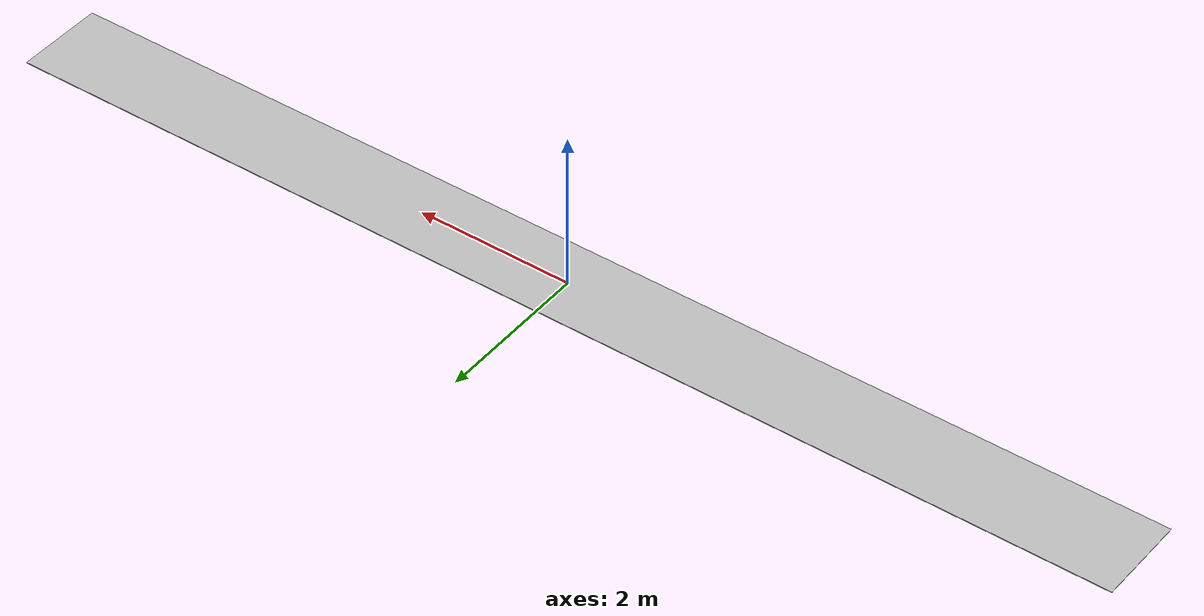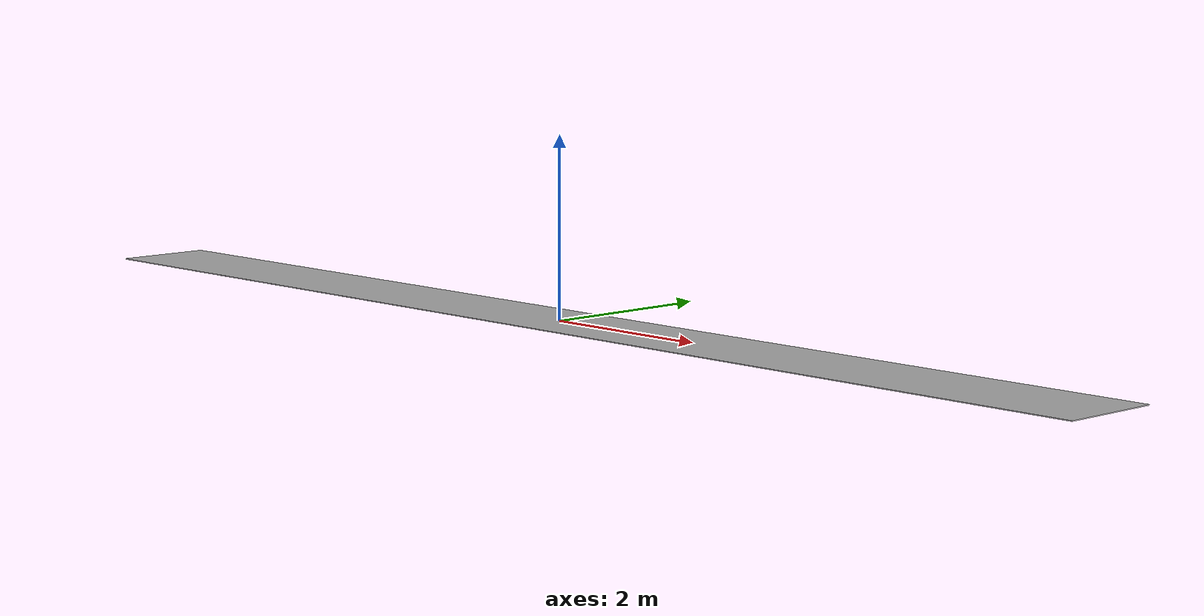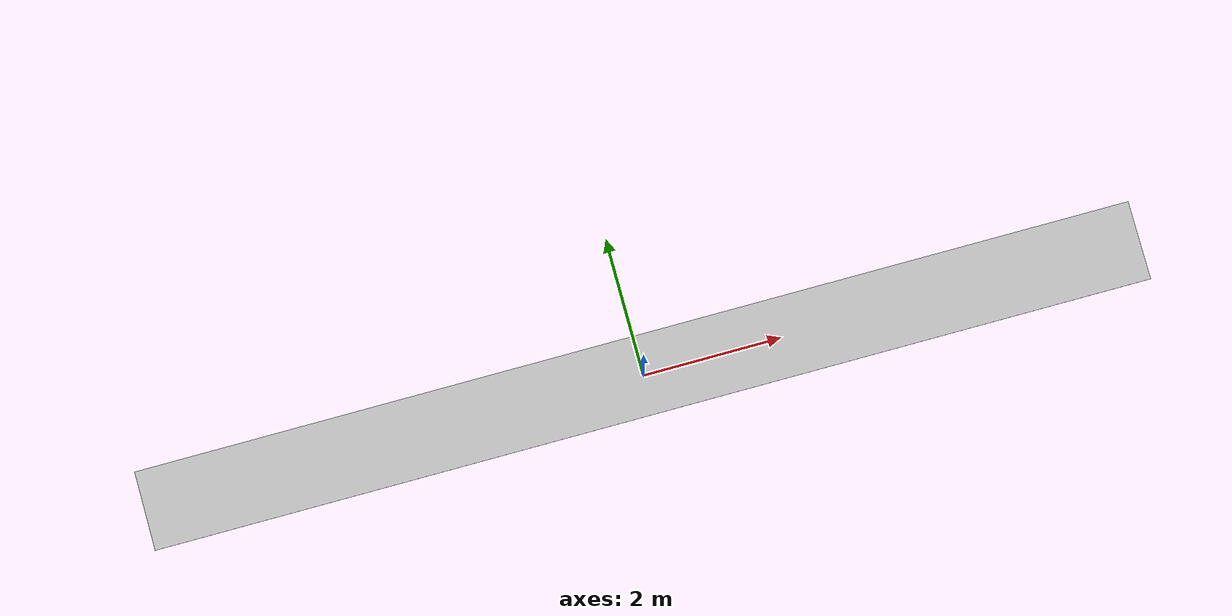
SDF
<?xml version='1.0'?>
<sdf version='1.6'>
  <model name='agv_path'>
    <link name='link'>
      <pose frame=''>0 0 0 0 -0 0</pose>
      <self_collide>0</self_collide>
      <enable_wind>0</enable_wind>
      <kinematic>0</kinematic>
      <visual name='visual'>
        <geometry>
          <box>
            <size>14.5 1.14587 0.009</size>
          </box>
        </geometry>
        <material>
          <script>
            <uri>model://agv_path/materials/scripts</uri>
            <uri>model://agv_path/materials/textures</uri>
            <name>AGVPathTexture</name>
          </script>
          <shader type='pixel'/>
        </material>
        <pose frame=''>0 0 0 0 -0 0</pose>
        <transparency>0</transparency>
        <cast_shadows>1</cast_shadows>
      </visual>
    </link>
    <static>1</static>
    <allow_auto_disable>1</allow_auto_disable>
  </model>
</sdf>
